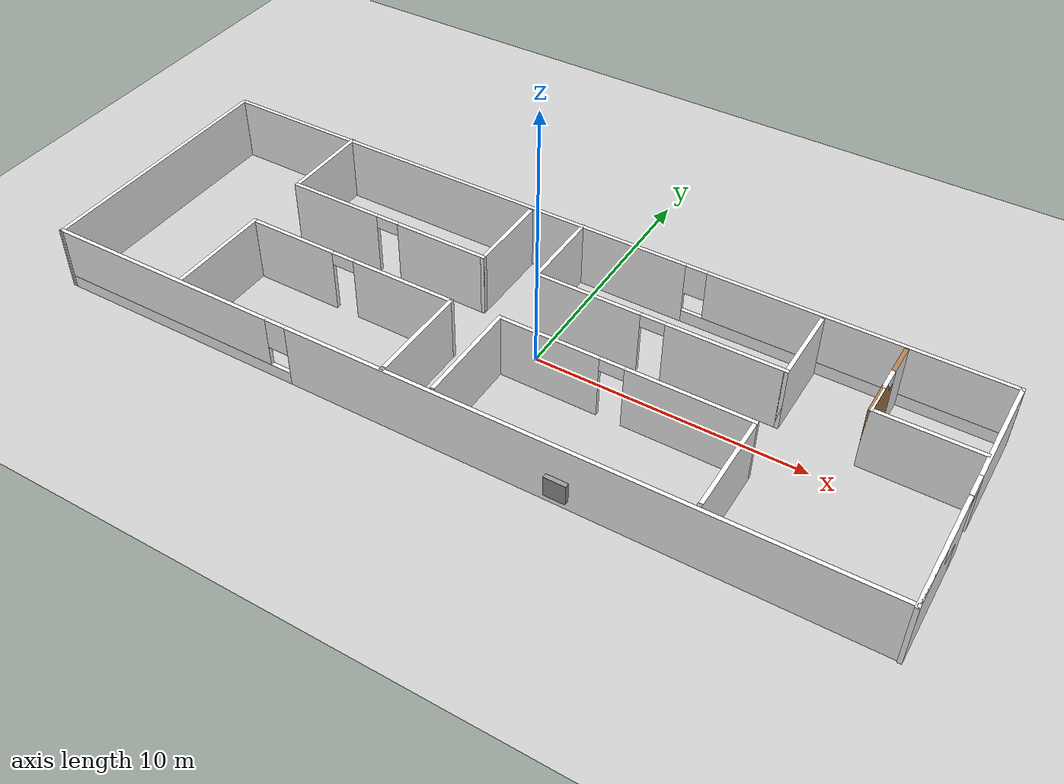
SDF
<sdf version="1.7">
 <world name="default">
  <light name="sun" type="directional">
   <pose>0 0 10 0 -0 0</pose>
   <diffuse>0.8 0.8 0.8 1</diffuse>
   <specular>0.2 0.2 0.2 1</specular>
   <attenuation>
    <range>1000</range>
    <constant>0.9</constant>
    <linear>0.01</linear>
    <quadratic>0.001</quadratic>
   </attenuation>
   <direction>-0.5 0.1 -0.9</direction>
   <spot><inner_angle>0</inner_angle><outer_angle>0</outer_angle><falloff>0</falloff></spot>
  </light>
  <model name="ground_plane">
   <static>1</static>
   <link name="link">
    <collision name="collision">
     <geometry><plane><normal>0 0 1</normal><size>100 100</size></plane></geometry>
     <surface><friction><ode><mu>100</mu><mu2>50</mu2></ode></friction></surface>
    </collision>
    <visual name="visual">
     <cast_shadows>0</cast_shadows>
     <geometry><plane><normal>0 0 1</normal><size>100 100</size></plane></geometry>
     <material>
      <script><uri>file://media/materials/scripts/gazebo.material</uri><name>Gazebo/Grey</name></script>
     </material>
    </visual>
   </link>
  </model>
  <gravity>0 0 -9.8</gravity>
  <magnetic_field>6e-06 2.3e-05 -4.2e-05</magnetic_field>
  <atmosphere type="adiabatic"/>
  <physics type="ode">
   <max_step_size>0.001</max_step_size>
   <real_time_factor>1</real_time_factor>
   <real_time_update_rate>1000</real_time_update_rate>
  </physics>
  <scene><ambient>0.4 0.4 0.4 1</ambient><background>0.7 0.7 0.7 1</background><shadows>1</shadows></scene>
  <audio><device>default</device></audio>
  <spherical_coordinates>
   <surface_model>EARTH_WGS84</surface_model>
   <latitude_deg>0</latitude_deg>
   <longitude_deg>0</longitude_deg>
   <elevation>0</elevation>
   <heading_deg>0</heading_deg>
  </spherical_coordinates>
  <model name="wall">
   <pose>-0.736264 -0.415955 0 0 -0 0</pose>
   <link name="Wall_0">
    <pose>15.5513 0.051134 0 0 -0 -1.5708</pose>
    <visual name="Wall_0_Visual_0">
     <pose>-2.75827 0 1.25 0 -0 0</pose>
     <geometry><box><size>4.23346 0.15 2.5</size></box></geometry>
     <material>
      <script><uri>file://media/materials/scripts/gazebo.material</uri><name>Gazebo/Tiless</name></script>
      <ambient>1 1 1 1</ambient>
     </material>
     <meta><layer>0</layer></meta>
    </visual>
    <collision name="Wall_0_Collision_0">
     <geometry><box><size>4.23346 0.15 2.5</size></box></geometry>
     <pose>-2.75827 0 1.25 0 -0 0</pose>
    </collision>
    <visual name="Wall_0_Visual_1">
     <pose>2.56673 0 1.25 0 -0 0</pose>
     <geometry><box><size>4.61654 0.15 2.5</size></box></geometry>
     <material>
      <script><uri>file://media/materials/scripts/gazebo.material</uri><name>Gazebo/Tiless</name></script>
      <ambient>1 1 1 1</ambient>
     </material>
     <meta><layer>0</layer></meta>
    </visual>
    <collision name="Wall_0_Collision_1">
     <geometry><box><size>4.61654 0.15 2.5</size></box></geometry>
     <pose>2.56673 0 1.25 0 -0 0</pose>
    </collision>
    <visual name="Wall_0_Visual_2">
     <pose>3.01174 0 1.25 0 -0 0</pose>
     <geometry><box><size>3.72651 0.15 2.5</size></box></geometry>
     <material>
      <script><uri>file://media/materials/scripts/gazebo.material</uri><name>Gazebo/Tiless</name></script>
      <ambient>1 1 1 1</ambient>
     </material>
     <meta><layer>0</layer></meta>
    </visual>
    <collision name="Wall_0_Collision_2">
     <geometry><box><size>3.72651 0.15 2.5</size></box></geometry>
     <pose>3.01174 0 1.25 0 -0 0</pose>
    </collision>
    <visual name="Wall_0_Visual_3">
     <pose>-0.196526 0 2.25 0 -0 0</pose>
     <geometry><box><size>0.890023 0.15 0.5</size></box></geometry>
     <material>
      <script><uri>file://media/materials/scripts/gazebo.material</uri><name>Gazebo/Tiless</name></script>
      <ambient>1 1 1 1</ambient>
     </material>
     <meta><layer>0</layer></meta>
    </visual>
    <collision name="Wall_0_Collision_3">
     <geometry><box><size>0.890023 0.15 0.5</size></box></geometry>
     <pose>-0.196526 0 2.25 0 -0 0</pose>
    </collision>
   </link>
   <link name="Wall_1">
    <pose>-0 -4.81865 0 0 -0 -3.13411</pose>
    <visual name="Wall_1_Visual_0">
     <pose>-5.00892 0 1.25 0 -0 0</pose>
     <geometry><box><size>21.2353 0.15 2.5</size></box></geometry>
     <material>
      <script><uri>file://media/materials/scripts/gazebo.material</uri><name>Gazebo/Tiless</name></script>
      <ambient>1 1 1 1</ambient>
     </material>
     <meta><layer>0</layer></meta>
    </visual>
    <collision name="Wall_1_Collision_0">
     <geometry><box><size>21.2353 0.15 2.5</size></box></geometry>
     <pose>-5.00892 0 1.25 0 -0 0</pose>
    </collision>
    <visual name="Wall_1_Visual_1">
     <pose>10.6177 0 0.25 0 -0 0</pose>
     <geometry><box><size>10.0178 0.15 0.5</size></box></geometry>
     <material>
      <script><uri>file://media/materials/scripts/gazebo.material</uri><name>Gazebo/Tiless</name></script>
      <ambient>1 1 1 1</ambient>
     </material>
     <meta><layer>0</layer></meta>
    </visual>
    <collision name="Wall_1_Collision_1">
     <geometry><box><size>10.0178 0.15 0.5</size></box></geometry>
     <pose>10.6177 0 0.25 0 -0 0</pose>
    </collision>
    <visual name="Wall_1_Visual_2">
     <pose>11.0177 0 1.5 0 -0 0</pose>
     <geometry><box><size>9.21785 0.15 2</size></box></geometry>
     <material>
      <script><uri>file://media/materials/scripts/gazebo.material</uri><name>Gazebo/Tiless</name></script>
      <ambient>1 1 1 1</ambient>
     </material>
     <meta><layer>0</layer></meta>
    </visual>
    <collision name="Wall_1_Collision_2">
     <geometry><box><size>9.21785 0.15 2</size></box></geometry>
     <pose>11.0177 0 1.5 0 -0 0</pose>
    </collision>
    <visual name="Wall_1_Visual_3">
     <pose>6.00875 0 1.9 0 -0 0</pose>
     <geometry><box><size>0.8 0.15 1.2</size></box></geometry>
     <material>
      <script><uri>file://media/materials/scripts/gazebo.material</uri><name>Gazebo/Tiless</name></script>
      <ambient>1 1 1 1</ambient>
     </material>
     <meta><layer>0</layer></meta>
    </visual>
    <collision name="Wall_1_Collision_3">
     <geometry><box><size>0.8 0.15 1.2</size></box></geometry>
     <pose>6.00875 0 1.9 0 -0 0</pose>
    </collision>
   </link>
   <link name="Wall_10">
    <collision name="Wall_10_Collision">
     <geometry><box><size>4 0.15 2.5</size></box></geometry>
     <pose>0 0 1.25 0 -0 0</pose>
    </collision>
    <visual name="Wall_10_Visual">
     <pose>0 0 1.25 0 -0 0</pose>
     <geometry><box><size>4 0.15 2.5</size></box></geometry>
     <material>
      <script><uri>file://media/materials/scripts/gazebo.material</uri><name>Gazebo/Tiless</name></script>
      <ambient>1 1 1 1</ambient>
     </material>
     <meta><layer>0</layer></meta>
    </visual>
    <pose>9.13204 -2.687 0 0 -0 1.5708</pose>
   </link>
   <link name="Wall_11">
    <pose>4.58204 -0.761998 0 0 -0 3.14159</pose>
    <visual name="Wall_11_Visual_0">
     <pose>-2.35994 0 1.25 0 -0 0</pose>
     <geometry><box><size>4.53012 0.15 2.5</size></box></geometry>
     <material>
      <script><uri>file://media/materials/scripts/gazebo.material</uri><name>Gazebo/Tiless</name></script>
      <ambient>1 1 1 1</ambient>
     </material>
     <meta><layer>0</layer></meta>
    </visual>
    <collision name="Wall_11_Collision_0">
     <geometry><box><size>4.53012 0.15 2.5</size></box></geometry>
     <pose>-2.35994 0 1.25 0 -0 0</pose>
    </collision>
    <visual name="Wall_11_Visual_1">
     <pose>2.71506 0 1.25 0 -0 0</pose>
     <geometry><box><size>3.81988 0.15 2.5</size></box></geometry>
     <material>
      <script><uri>file://media/materials/scripts/gazebo.material</uri><name>Gazebo/Tiless</name></script>
      <ambient>1 1 1 1</ambient>
     </material>
     <meta><layer>0</layer></meta>
    </visual>
    <collision name="Wall_11_Collision_1">
     <geometry><box><size>3.81988 0.15 2.5</size></box></geometry>
     <pose>2.71506 0 1.25 0 -0 0</pose>
    </collision>
    <visual name="Wall_11_Visual_2">
     <pose>0.355125 0 2.25 0 -0 0</pose>
     <geometry><box><size>0.9 0.15 0.5</size></box></geometry>
     <material>
      <script><uri>file://media/materials/scripts/gazebo.material</uri><name>Gazebo/Tiless</name></script>
      <ambient>1 1 1 1</ambient>
     </material>
     <meta><layer>0</layer></meta>
    </visual>
    <collision name="Wall_11_Collision_2">
     <geometry><box><size>0.9 0.15 0.5</size></box></geometry>
     <pose>0.355125 0 2.25 0 -0 0</pose>
    </collision>
   </link>
   <link name="Wall_12">
    <collision name="Wall_12_Collision">
     <geometry><box><size>4 0.15 2.5</size></box></geometry>
     <pose>0 0 1.25 0 -0 0</pose>
    </collision>
    <visual name="Wall_12_Visual">
     <pose>0 0 1.25 0 -0 0</pose>
     <geometry><box><size>4 0.15 2.5</size></box></geometry>
     <material>
      <script><uri>file://media/materials/scripts/gazebo.material</uri><name>Gazebo/Tiless</name></script>
      <ambient>1 1 1 1</ambient>
     </material>
     <meta><layer>0</layer></meta>
    </visual>
    <pose>0.032041 -2.687 0 0 -0 -1.5708</pose>
   </link>
   <link name="Wall_14">
    <collision name="Wall_14_Collision">
     <geometry><box><size>0.16 0.15 2.5</size></box></geometry>
     <pose>0 0 1.25 0 -0 0</pose>
    </collision>
    <visual name="Wall_14_Visual">
     <pose>0 0 1.25 0 -0 0</pose>
     <geometry><box><size>0.16 0.15 2.5</size></box></geometry>
     <material>
      <script><uri>file://media/materials/scripts/gazebo.material</uri><name>Gazebo/Grey</name></script>
      <ambient>1 1 1 1</ambient>
     </material>
     <meta><layer>0</layer></meta>
    </visual>
    <pose>-1.79597 -4.77382 0 0 -0 0</pose>
   </link>
   <link name="Wall_15">
    <collision name="Wall_15_Collision">
     <geometry><box><size>4 0.15 2.5</size></box></geometry>
     <pose>0 0 1.25 0 -0 0</pose>
    </collision>
    <visual name="Wall_15_Visual">
     <pose>0 0 1.25 0 -0 0</pose>
     <geometry><box><size>4 0.15 2.5</size></box></geometry>
     <material>
      <script><uri>file://media/materials/scripts/gazebo.material</uri><name>Gazebo/Tiless</name></script>
      <ambient>1 1 1 1</ambient>
     </material>
     <meta><layer>0</layer></meta>
    </visual>
    <pose>-1.79096 -2.84882 0 0 -0 1.5708</pose>
   </link>
   <link name="Wall_16">
    <pose>-5.96596 -0.92382 0 0 -0 3.14159</pose>
    <visual name="Wall_16_Visual_0">
     <pose>-2.22767 0 1.25 0 -0 0</pose>
     <geometry><box><size>4.04466 0.15 2.5</size></box></geometry>
     <material>
      <script><uri>file://media/materials/scripts/gazebo.material</uri><name>Gazebo/Tiless</name></script>
      <ambient>1 1 1 1</ambient>
     </material>
     <meta><layer>0</layer></meta>
    </visual>
    <collision name="Wall_16_Collision_0">
     <geometry><box><size>4.04466 0.15 2.5</size></box></geometry>
     <pose>-2.22767 0 1.25 0 -0 0</pose>
    </collision>
    <visual name="Wall_16_Visual_1">
     <pose>2.47233 0 1.25 0 -0 0</pose>
     <geometry><box><size>3.55534 0.15 2.5</size></box></geometry>
     <material>
      <script><uri>file://media/materials/scripts/gazebo.material</uri><name>Gazebo/Tiless</name></script>
      <ambient>1 1 1 1</ambient>
     </material>
     <meta><layer>0</layer></meta>
    </visual>
    <collision name="Wall_16_Collision_1">
     <geometry><box><size>3.55534 0.15 2.5</size></box></geometry>
     <pose>2.47233 0 1.25 0 -0 0</pose>
    </collision>
    <visual name="Wall_16_Visual_2">
     <pose>0.244658 0 2.25 0 -0 0</pose>
     <geometry><box><size>0.9 0.15 0.5</size></box></geometry>
     <material>
      <script><uri>file://media/materials/scripts/gazebo.material</uri><name>Gazebo/Tiless</name></script>
      <ambient>1 1 1 1</ambient>
     </material>
     <meta><layer>0</layer></meta>
    </visual>
    <collision name="Wall_16_Collision_2">
     <geometry><box><size>0.9 0.15 0.5</size></box></geometry>
     <pose>0.244658 0 2.25 0 -0 0</pose>
    </collision>
   </link>
   <link name="Wall_17">
    <collision name="Wall_17_Collision">
     <geometry><box><size>4 0.15 2.5</size></box></geometry>
     <pose>0 0 1.25 0 -0 0</pose>
    </collision>
    <visual name="Wall_17_Visual">
     <pose>0 0 1.25 0 -0 0</pose>
     <geometry><box><size>4 0.15 2.5</size></box></geometry>
     <material>
      <script><uri>file://media/materials/scripts/gazebo.material</uri><name>Gazebo/Tiless</name></script>
      <ambient>1 1 1 1</ambient>
     </material>
     <meta><layer>0</layer></meta>
    </visual>
    <pose>-10.141 -2.84882 0 0 -0 -1.5708</pose>
   </link>
   <link name="Wall_19">
    <collision name="Wall_19_Collision">
     <geometry><box><size>0.16 0.15 2.5</size></box></geometry>
     <pose>0 0 1.25 0 -0 0</pose>
    </collision>
    <visual name="Wall_19_Visual">
     <pose>0 0 1.25 0 -0 0</pose>
     <geometry><box><size>0.16 0.15 2.5</size></box></geometry>
     <material>
      <script><uri>file://media/materials/scripts/gazebo.material</uri><name>Gazebo/Grey</name></script>
      <ambient>1 1 1 1</ambient>
     </material>
     <meta><layer>0</layer></meta>
    </visual>
    <pose>-10.2107 4.93552 0 0 -0 0</pose>
   </link>
   <link name="Wall_2">
    <collision name="Wall_2_Collision">
     <geometry><box><size>10 0.15 2.5</size></box></geometry>
     <pose>0 0 1.25 0 -0 0</pose>
    </collision>
    <visual name="Wall_2_Visual">
     <pose>0 0 1.25 0 -0 0</pose>
     <geometry><box><size>10 0.15 2.5</size></box></geometry>
     <material>
      <script><uri>file://media/materials/scripts/gazebo.material</uri><name>Gazebo/Tiless</name></script>
      <ambient>1 1 1 1</ambient>
     </material>
     <meta><layer>0</layer></meta>
    </visual>
    <pose>-15.5247 -0.009961 0 0 -0 1.5708</pose>
   </link>
   <link name="Wall_20">
    <collision name="Wall_20_Collision">
     <geometry><box><size>3.5 0.15 2.5</size></box></geometry>
     <pose>0 0 1.25 0 -0 0</pose>
    </collision>
    <visual name="Wall_20_Visual">
     <pose>0 0 1.25 0 -0 0</pose>
     <geometry><box><size>3.5 0.15 2.5</size></box></geometry>
     <material>
      <script><uri>file://media/materials/scripts/gazebo.material</uri><name>Gazebo/Tiless</name></script>
      <ambient>1 1 1 1</ambient>
     </material>
     <meta><layer>0</layer></meta>
    </visual>
    <pose>-10.2057 3.26052 0 0 -0 -1.5708</pose>
   </link>
   <link name="Wall_21">
    <pose>-6.15573 1.58552 0 0 -0 0</pose>
    <visual name="Wall_21_Visual_0">
     <pose>-2.27449 0 1.25 0 -0 0</pose>
     <geometry><box><size>3.70101 0.15 2.5</size></box></geometry>
     <material>
      <script><uri>file://media/materials/scripts/gazebo.material</uri><name>Gazebo/Tiless</name></script>
      <ambient>1 1 1 1</ambient>
     </material>
     <meta><layer>0</layer></meta>
    </visual>
    <collision name="Wall_21_Collision_0">
     <geometry><box><size>3.70101 0.15 2.5</size></box></geometry>
     <pose>-2.27449 0 1.25 0 -0 0</pose>
    </collision>
    <visual name="Wall_21_Visual_1">
     <pose>2.30051 0 1.25 0 -0 0</pose>
     <geometry><box><size>3.64899 0.15 2.5</size></box></geometry>
     <material>
      <script><uri>file://media/materials/scripts/gazebo.material</uri><name>Gazebo/Tiless</name></script>
      <ambient>1 1 1 1</ambient>
     </material>
     <meta><layer>0</layer></meta>
    </visual>
    <collision name="Wall_21_Collision_1">
     <geometry><box><size>3.64899 0.15 2.5</size></box></geometry>
     <pose>2.30051 0 1.25 0 -0 0</pose>
    </collision>
    <visual name="Wall_21_Visual_2">
     <pose>0.026013 0 2.25 0 -0 0</pose>
     <geometry><box><size>0.9 0.15 0.5</size></box></geometry>
     <material>
      <script><uri>file://media/materials/scripts/gazebo.material</uri><name>Gazebo/Tiless</name></script>
      <ambient>1 1 1 1</ambient>
     </material>
     <meta><layer>0</layer></meta>
    </visual>
    <collision name="Wall_21_Collision_2">
     <geometry><box><size>0.9 0.15 0.5</size></box></geometry>
     <pose>0.026013 0 2.25 0 -0 0</pose>
    </collision>
   </link>
   <link name="Wall_22">
    <collision name="Wall_22_Collision">
     <geometry><box><size>3.25 0.15 2.5</size></box></geometry>
     <pose>0 0 1.25 0 -0 0</pose>
    </collision>
    <visual name="Wall_22_Visual">
     <pose>0 0 1.25 0 -0 0</pose>
     <geometry><box><size>3.25 0.15 2.5</size></box></geometry>
     <material>
      <script><uri>file://media/materials/scripts/gazebo.material</uri><name>Gazebo/Tiless</name></script>
      <ambient>1 1 1 1</ambient>
     </material>
     <meta><layer>0</layer></meta>
    </visual>
    <pose>-2.10573 3.13552 0 0 -0 1.5708</pose>
   </link>
   <link name="Wall_24">
    <collision name="Wall_24_Collision">
     <geometry><box><size>3.25 0.15 2.5</size></box></geometry>
     <pose>0 0 1.25 0 -0 0</pose>
    </collision>
    <visual name="Wall_24_Visual">
     <pose>0 0 1.25 0 -0 0</pose>
     <geometry><box><size>3.25 0.15 2.5</size></box></geometry>
     <material>
      <script><uri>file://media/materials/scripts/gazebo.material</uri><name>Gazebo/Tiless</name></script>
      <ambient>1 1 1 1</ambient>
     </material>
     <meta><layer>0</layer></meta>
    </visual>
    <pose>-0.061375 3.34506 0 0 -0 -1.5708</pose>
   </link>
   <link name="Wall_25">
    <pose>4.48862 1.79506 0 0 -0 0</pose>
    <visual name="Wall_25_Visual_0">
     <pose>-2.60767 0 1.25 0 -0 0</pose>
     <geometry><box><size>4.03466 0.15 2.5</size></box></geometry>
     <material>
      <script><uri>file://media/materials/scripts/gazebo.material</uri><name>Gazebo/Tiless</name></script>
      <ambient>1 1 1 1</ambient>
     </material>
     <meta><layer>0</layer></meta>
    </visual>
    <collision name="Wall_25_Collision_0">
     <geometry><box><size>4.03466 0.15 2.5</size></box></geometry>
     <pose>-2.60767 0 1.25 0 -0 0</pose>
    </collision>
    <visual name="Wall_25_Visual_1">
     <pose>2.46733 0 1.25 0 -0 0</pose>
     <geometry><box><size>4.31534 0.15 2.5</size></box></geometry>
     <material>
      <script><uri>file://media/materials/scripts/gazebo.material</uri><name>Gazebo/Tiless</name></script>
      <ambient>1 1 1 1</ambient>
     </material>
     <meta><layer>0</layer></meta>
    </visual>
    <collision name="Wall_25_Collision_1">
     <geometry><box><size>4.31534 0.15 2.5</size></box></geometry>
     <pose>2.46733 0 1.25 0 -0 0</pose>
    </collision>
    <visual name="Wall_25_Visual_2">
     <pose>-0.140342 0 2.25 0 -0 0</pose>
     <geometry><box><size>0.9 0.15 0.5</size></box></geometry>
     <material>
      <script><uri>file://media/materials/scripts/gazebo.material</uri><name>Gazebo/Tiless</name></script>
      <ambient>1 1 1 1</ambient>
     </material>
     <meta><layer>0</layer></meta>
    </visual>
    <collision name="Wall_25_Collision_2">
     <geometry><box><size>0.9 0.15 0.5</size></box></geometry>
     <pose>-0.140342 0 2.25 0 -0 0</pose>
    </collision>
   </link>
   <link name="Wall_26">
    <collision name="Wall_26_Collision">
     <geometry><box><size>3 0.15 2.5</size></box></geometry>
     <pose>0 0 1.25 0 -0 0</pose>
    </collision>
    <visual name="Wall_26_Visual">
     <pose>0 0 1.25 0 -0 0</pose>
     <geometry><box><size>3 0.15 2.5</size></box></geometry>
     <material>
      <script><uri>file://media/materials/scripts/gazebo.material</uri><name>Gazebo/Tiless</name></script>
      <ambient>1 1 1 1</ambient>
     </material>
     <meta><layer>0</layer></meta>
    </visual>
    <pose>9.03862 3.22006 0 0 -0 1.5708</pose>
   </link>
   <link name="Wall_3">
    <pose>0.0133 4.88309 0 0 -0 -0.002056</pose>
    <visual name="Wall_3_Visual_0">
     <pose>-5.79864 0 1.25 0 -0 0</pose>
     <geometry><box><size>19.6288 0.15 2.5</size></box></geometry>
     <material>
      <script><uri>file://media/materials/scripts/gazebo.material</uri><name>Gazebo/Tiless</name></script>
      <ambient>1 1 1 1</ambient>
     </material>
     <meta><layer>0</layer></meta>
    </visual>
    <collision name="Wall_3_Collision_0">
     <geometry><box><size>19.6288 0.15 2.5</size></box></geometry>
     <pose>-5.79864 0 1.25 0 -0 0</pose>
    </collision>
    <visual name="Wall_3_Visual_1">
     <pose>9.81442 0 0.25 0 -0 0</pose>
     <geometry><box><size>11.5973 0.15 0.5</size></box></geometry>
     <material>
      <script><uri>file://media/materials/scripts/gazebo.material</uri><name>Gazebo/Tiless</name></script>
      <ambient>1 1 1 1</ambient>
     </material>
     <meta><layer>0</layer></meta>
    </visual>
    <collision name="Wall_3_Collision_1">
     <geometry><box><size>11.5973 0.15 0.5</size></box></geometry>
     <pose>9.81442 0 0.25 0 -0 0</pose>
    </collision>
    <visual name="Wall_3_Visual_2">
     <pose>10.2144 0 1.5 0 -0 0</pose>
     <geometry><box><size>10.7973 0.15 2</size></box></geometry>
     <material>
      <script><uri>file://media/materials/scripts/gazebo.material</uri><name>Gazebo/Tiless</name></script>
      <ambient>1 1 1 1</ambient>
     </material>
     <meta><layer>0</layer></meta>
    </visual>
    <collision name="Wall_3_Collision_2">
     <geometry><box><size>10.7973 0.15 2</size></box></geometry>
     <pose>10.2144 0 1.5 0 -0 0</pose>
    </collision>
    <visual name="Wall_3_Visual_3">
     <pose>4.41578 0 1.9 0 -0 0</pose>
     <geometry><box><size>0.8 0.15 1.2</size></box></geometry>
     <material>
      <script><uri>file://media/materials/scripts/gazebo.material</uri><name>Gazebo/Tiless</name></script>
      <ambient>1 1 1 1</ambient>
     </material>
     <meta><layer>0</layer></meta>
    </visual>
    <collision name="Wall_3_Collision_3">
     <geometry><box><size>0.8 0.15 1.2</size></box></geometry>
     <pose>4.41578 0 1.9 0 -0 0</pose>
    </collision>
   </link>
   <link name="Wall_5">
    <collision name="Wall_5_Collision">
     <geometry><box><size>3.25 0.15 2.5</size></box></geometry>
     <pose>0 0 1.25 0 -0 0</pose>
    </collision>
    <visual name="Wall_5_Visual">
     <pose>0 0 1.25 0 -0 0</pose>
     <geometry><box><size>3.25 0.15 2.5</size></box></geometry>
     <material>
      <script><uri>file://media/materials/scripts/gazebo.material</uri><name>Gazebo/Wood</name></script>
      <ambient>1 1 1 1</ambient>
     </material>
     <meta><layer>0</layer></meta>
    </visual>
    <pose>11.873 3.12771 0 0 -0 1.5708</pose>
   </link>
   <link name="Wall_6">
    <pose>11.873 3.12771 0 0 -0 -1.5708</pose>
    <visual name="Wall_6_Visual_0">
     <pose>-1.03116 0 1.25 0 -0 0</pose>
     <geometry><box><size>1.18769 0.15 2.5</size></box></geometry>
     <material>
      <script><uri>file://media/materials/scripts/gazebo.material</uri><name>Gazebo/Tiless</name></script>
      <ambient>1 1 1 1</ambient>
     </material>
     <meta><layer>0</layer></meta>
    </visual>
    <collision name="Wall_6_Collision_0">
     <geometry><box><size>1.18769 0.15 2.5</size></box></geometry>
     <pose>-1.03116 0 1.25 0 -0 0</pose>
    </collision>
    <visual name="Wall_6_Visual_1">
     <pose>1.04384 0 1.25 0 -0 0</pose>
     <geometry><box><size>1.16231 0.15 2.5</size></box></geometry>
     <material>
      <script><uri>file://media/materials/scripts/gazebo.material</uri><name>Gazebo/Tiless</name></script>
      <ambient>1 1 1 1</ambient>
     </material>
     <meta><layer>0</layer></meta>
    </visual>
    <collision name="Wall_6_Collision_1">
     <geometry><box><size>1.16231 0.15 2.5</size></box></geometry>
     <pose>1.04384 0 1.25 0 -0 0</pose>
    </collision>
    <visual name="Wall_6_Visual_2">
     <pose>0.012688 0 2.25 0 -0 0</pose>
     <geometry><box><size>0.9 0.15 0.5</size></box></geometry>
     <material>
      <script><uri>file://media/materials/scripts/gazebo.material</uri><name>Gazebo/Tiless</name></script>
      <ambient>1 1 1 1</ambient>
     </material>
     <meta><layer>0</layer></meta>
    </visual>
    <collision name="Wall_6_Collision_2">
     <geometry><box><size>0.9 0.15 0.5</size></box></geometry>
     <pose>0.012688 0 2.25 0 -0 0</pose>
    </collision>
   </link>
   <link name="Wall_7">
    <collision name="Wall_7_Collision">
     <geometry><box><size>3.75 0.15 2.5</size></box></geometry>
     <pose>0 0 1.25 0 -0 0</pose>
    </collision>
    <visual name="Wall_7_Visual">
     <pose>0 0 1.25 0 -0 0</pose>
     <geometry><box><size>3.75 0.15 2.5</size></box></geometry>
     <material>
      <script><uri>file://media/materials/scripts/gazebo.material</uri><name>Gazebo/Tiless</name></script>
      <ambient>1 1 1 1</ambient>
     </material>
     <meta><layer>0</layer></meta>
    </visual>
    <pose>13.673 1.57771 0 0 -0 0</pose>
   </link>
   <link name="Wall_9">
    <collision name="Wall_9_Collision">
     <geometry><box><size>0.16 0.15 2.5</size></box></geometry>
     <pose>0 0 1.25 0 -0 0</pose>
    </collision>
    <visual name="Wall_9_Visual">
     <pose>0 0 1.25 0 -0 0</pose>
     <geometry><box><size>0.16 0.15 2.5</size></box></geometry>
     <material>
      <script><uri>file://media/materials/scripts/gazebo.material</uri><name>Gazebo/Grey</name></script>
      <ambient>1 1 1 1</ambient>
     </material>
     <meta><layer>0</layer></meta>
    </visual>
    <pose>9.12704 -4.612 0 0 -0 0</pose>
   </link>
   <link name="Window_0">
    <collision name="Window_0_Collision">
     <geometry><box><size>0.8 0.17 0.8</size></box></geometry>
     <pose>0 0 0.4 0 -0 0</pose>
    </collision>
    <visual name="Window_0_Visual">
     <pose>0 0 0.4 0 -0 0</pose>
     <geometry><box><size>0.8 0.17 0.8</size></box></geometry>
     <material>
      <script><uri>file://media/materials/scripts/gazebo.material</uri><name>Gazebo/Grey</name></script>
     </material>
    </visual>
    <pose>-6.17017 5.01643 0.5 0 -0 0</pose>
   </link>
   <link name="Window_3">
    <collision name="Window_3_Collision">
     <geometry><box><size>0.8 0.17 0.8</size></box></geometry>
     <pose>0 0 0.4 0 -0 0</pose>
    </collision>
    <visual name="Window_3_Visual">
     <pose>0 0 0.4 0 -0 0</pose>
     <geometry><box><size>0.8 0.17 0.8</size></box></geometry>
     <material>
      <script><uri>file://media/materials/scripts/gazebo.material</uri><name>Gazebo/Grey</name></script>
     </material>
    </visual>
    <pose>4.67193 -5.01655 0.5 0 -0 0</pose>
   </link>
   <link name="Window_4">
    <collision name="Window_4_Collision">
     <geometry><box><size>0.8 0.17 0.8</size></box></geometry>
     <pose>0 0 0.4 0 -0 0</pose>
    </collision>
    <visual name="Window_4_Visual">
     <pose>0 0 0.4 0 -0 0</pose>
     <geometry><box><size>0.8 0.17 0.8</size></box></geometry>
     <material>
      <script><uri>file://media/materials/scripts/gazebo.material</uri><name>Gazebo/Grey</name></script>
     </material>
    </visual>
    <pose>13.734 5.17825 0.5 0 -0 0</pose>
   </link>
   <static>1</static>
  </model>
  <model name="cabinet">
   <static>1</static>
   <link name="cabinet_bottom_plate">
    <inertial>
     <pose>0 0 -1 0 -0 0</pose>
     <inertia><ixx>2.05</ixx><ixy>0</ixy><ixz>0</ixz><iyy>2.05</iyy><iyz>0</iyz><izz>2.05</izz></inertia>
     <mass>25</mass>
    </inertial>
    <collision name="cabinet_bottom_plate_geom">
     <pose>0 0 0.01 0 -0 0</pose>
     <geometry><box><size>0.45 0.45 0.02</size></box></geometry>
    </collision>
    <visual name="cabinet_bottom_plate_geom_visual">
     <pose>0 0 0.01 0 -0 0</pose>
     <geometry><box><size>0.45 0.45 0.02</size></box></geometry>
     <material>
      <script><uri>file://media/materials/scripts/gazebo.material</uri><name>Gazebo/Wood</name></script>
     </material>
    </visual>
    <collision name="cabinet_bottom_plate_geom_cabinet_back_plate">
     <pose>0.235 0 0.51 0 -0 0</pose>
     <geometry><box><size>0.02 0.45 1.02</size></box></geometry>
    </collision>
    <visual name="cabinet_bottom_plate_geom_cabinet_back_plate_visual">
     <pose>0.235 0 0.51 0 -0 0</pose>
     <geometry><box><size>0.02 0.45 1.02</size></box></geometry>
     <material>
      <script><uri>file://media/materials/scripts/gazebo.material</uri><name>Gazebo/Wood</name></script>
     </material>
    </visual>
    <collision name="cabinet_bottom_plate_geom_cabinet_left_plate">
     <pose>0 0.235 0.51 0 -0 0</pose>
     <geometry><box><size>0.45 0.02 1.02</size></box></geometry>
    </collision>
    <visual name="cabinet_bottom_plate_geom_cabinet_left_plate_visual">
     <pose>0 0.235 0.51 0 -0 0</pose>
     <geometry><box><size>0.45 0.02 1.02</size></box></geometry>
     <material>
      <script><uri>file://media/materials/scripts/gazebo.material</uri><name>Gazebo/Wood</name></script>
     </material>
    </visual>
    <collision name="cabinet_bottom_plate_geom_cabinet_middle_plate">
     <pose>0 0 0.51 0 -0 0</pose>
     <geometry><box><size>0.45 0.45 0.02</size></box></geometry>
    </collision>
    <visual name="cabinet_bottom_plate_geom_cabinet_middle_plate_visual">
     <pose>0 0 0.51 0 -0 0</pose>
     <geometry><box><size>0.45 0.45 0.02</size></box></geometry>
     <material>
      <script><uri>file://media/materials/scripts/gazebo.material</uri><name>Gazebo/Wood</name></script>
     </material>
    </visual>
    <collision name="cabinet_bottom_plate_geom_cabinet_right_plate">
     <pose>0 -0.235 0.51 0 -0 0</pose>
     <geometry><box><size>0.45 0.02 1.02</size></box></geometry>
    </collision>
    <visual name="cabinet_bottom_plate_geom_cabinet_right_plate_visual">
     <pose>0 -0.235 0.51 0 -0 0</pose>
     <geometry><box><size>0.45 0.02 1.02</size></box></geometry>
     <material>
      <script><uri>file://media/materials/scripts/gazebo.material</uri><name>Gazebo/Wood</name></script>
     </material>
    </visual>
    <collision name="cabinet_bottom_plate_geom_cabinet_top_plate">
     <pose>0 0 1.01 0 -0 0</pose>
     <geometry><box><size>0.45 0.45 0.02</size></box></geometry>
    </collision>
    <visual name="cabinet_bottom_plate_geom_cabinet_top_plate_visual">
     <pose>0 0 1.01 0 -0 0</pose>
     <geometry><box><size>0.45 0.45 0.02</size></box></geometry>
     <material>
      <script><uri>file://media/materials/scripts/gazebo.material</uri><name>Gazebo/Wood</name></script>
     </material>
    </visual>
   </link>
   <pose>0.282745 -4.34845 0 0 -0 0</pose>
  </model>
 </world>
</sdf>
